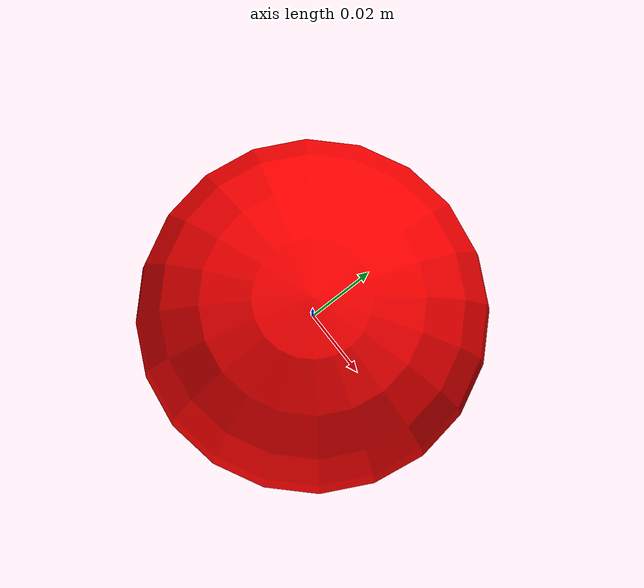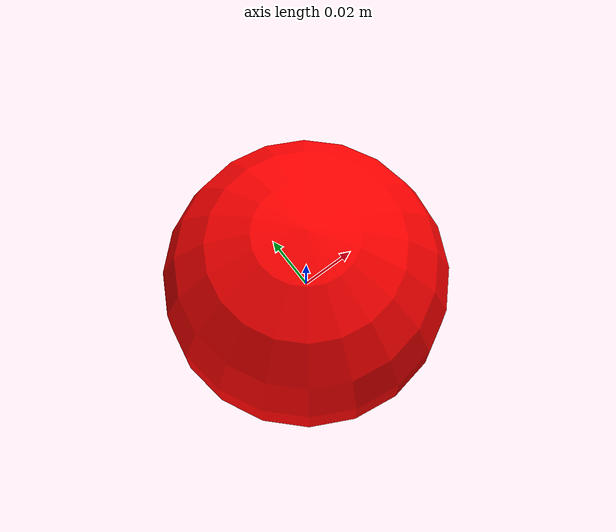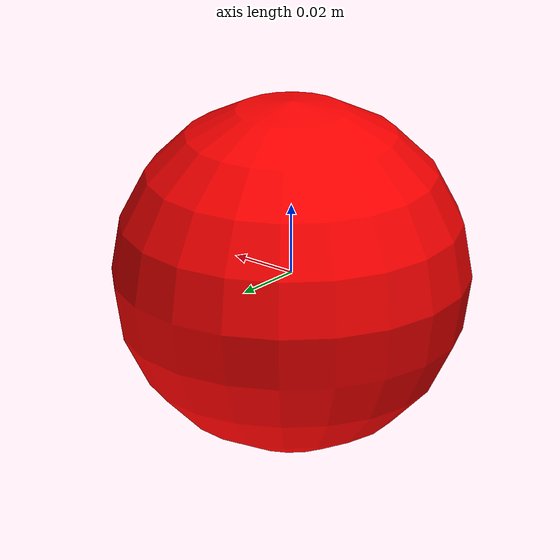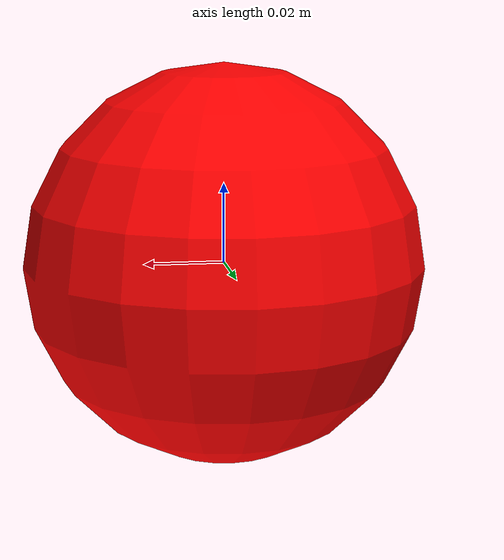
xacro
<?xml version="1.0"?>
<robot name="overhead_cam" xmlns:xacro="http://ros.org/wiki/xacro">

  <xacro:property name="M_PI" value="3.14159265358979"/>

  <!-- Root link — placed at camera position in world via set_model_state -->
  <link name="base_link">
    <visual>
      <geometry><sphere radius="0.05"/></geometry>
      <material name="red"><color rgba="1 0 0 1"/></material>
    </visual>
    <inertial>
      <mass value="0.001"/>
      <inertia ixx="0.000001" ixy="0" ixz="0" iyy="0.000001" iyz="0" izz="0.000001"/>
    </inertial>
  </link>

  <!--
    Camera sensor link.
    Joint pitch = π/2  →  camera_link +X  =  base_link −Z  =  world −Z  (nadir).
  -->
  <link name="overhead_cam_link">
    <visual>
      <origin xyz="0 0 0" rpy="0 ${M_PI/2} 0"/>
      <geometry><cylinder radius="0.02" length="0.06"/></geometry>
      <material name="grey"><color rgba="0.3 0.3 0.3 1"/></material>
    </visual>
  </link>
  <joint name="cam_joint" type="fixed">
    <origin xyz="0 0 0" rpy="0 ${M_PI/2} 0"/>
    <parent link="base_link"/>
    <child link="overhead_cam_link"/>
  </joint>

  <!-- Optical frame — standard ROS convention: x=right, y=down, z=forward -->
  <link name="overhead_cam_optical"/>
  <joint name="cam_optical_joint" type="fixed">
    <origin xyz="0 0 0" rpy="${-M_PI/2} 0 ${-M_PI/2}"/>
    <parent link="overhead_cam_link"/>
    <child link="overhead_cam_optical"/>
  </joint>

  <!-- Gazebo camera sensor -->
  <gazebo reference="overhead_cam_link">
    <sensor type="camera" name="overhead_cam_sensor">
      <update_rate>30.0</update_rate>
      <camera name="overhead_cam_camera">
        <horizontal_fov>1.1693706</horizontal_fov>  <!-- 67° in radians -->
        <image>
          <width>924</width>
          <height>690</height>
          <format>R8G8B8</format>
        </image>
        <clip>
          <near>0.5</near>
          <far>500</far>
        </clip>
        <noise>
          <type>gaussian</type>
          <mean>0.0</mean>
          <stddev>0.007</stddev>
        </noise>
      </camera>
      <plugin name="overhead_cam_plugin" filename="libgazebo_ros_camera.so">
        <alwaysOn>true</alwaysOn>
        <updateRate>0.0</updateRate>
        <cameraName>overhead_cam</cameraName>
        <imageTopicName>image_raw</imageTopicName>
        <cameraInfoTopicName>camera_info</cameraInfoTopicName>
        <frameName>overhead_cam_optical</frameName>
        <distortionK1>0.0</distortionK1>
        <distortionK2>0.0</distortionK2>
        <distortionK3>0.0</distortionK3>
        <distortionT1>0.0</distortionT1>
        <distortionT2>0.0</distortionT2>
      </plugin>
    </sensor>
  </gazebo>

  <!-- Make base_link static in Gazebo (no gravity, no physics) -->
  <gazebo reference="base_link">
    <static>true</static>
    <turnGravityOff>true</turnGravityOff>
  </gazebo>
  <gazebo reference="overhead_cam_link">
    <turnGravityOff>true</turnGravityOff>
  </gazebo>

</robot>
